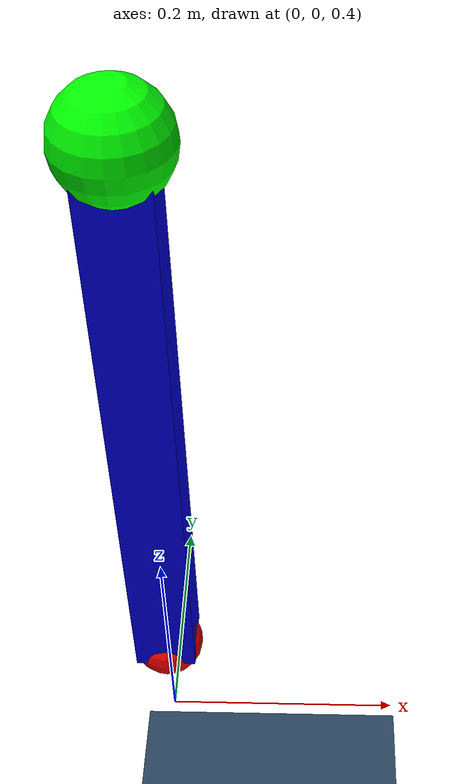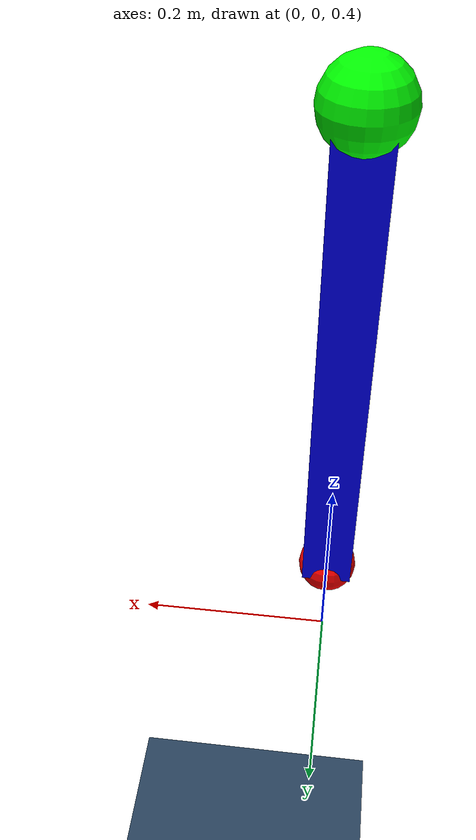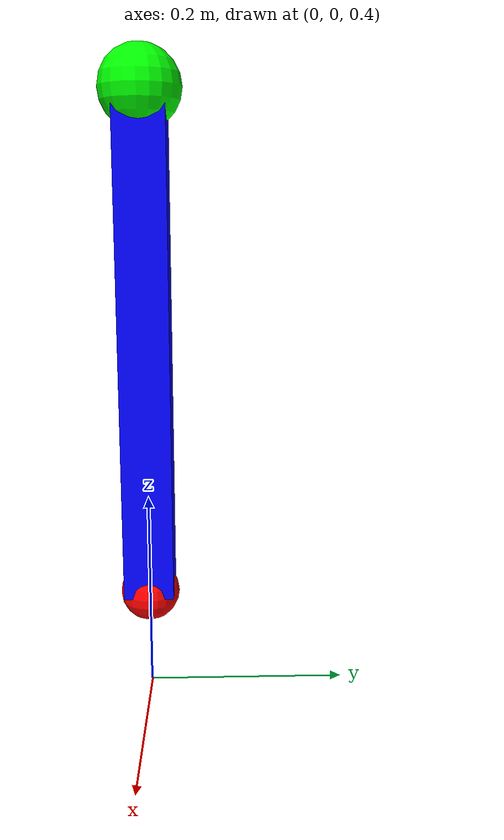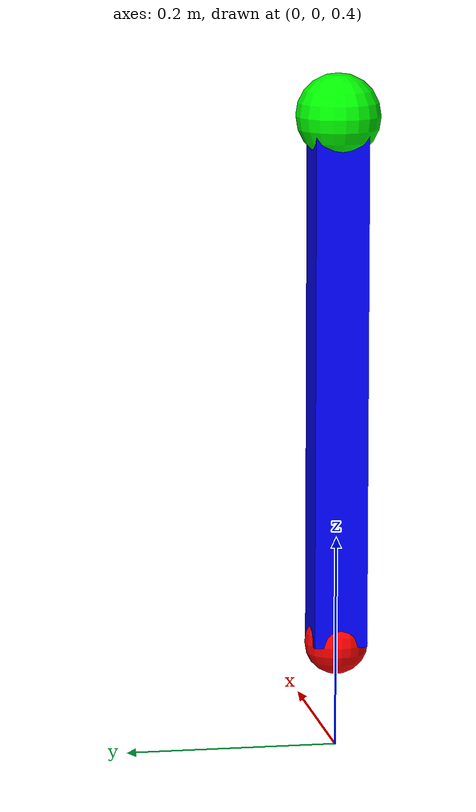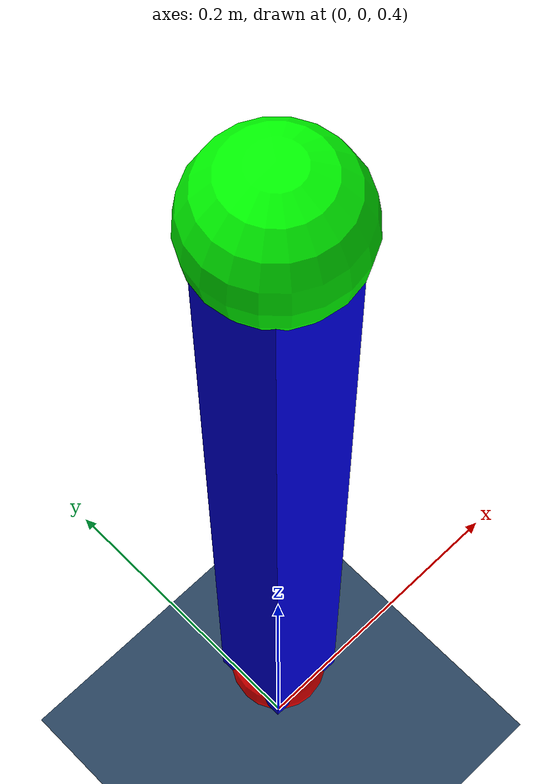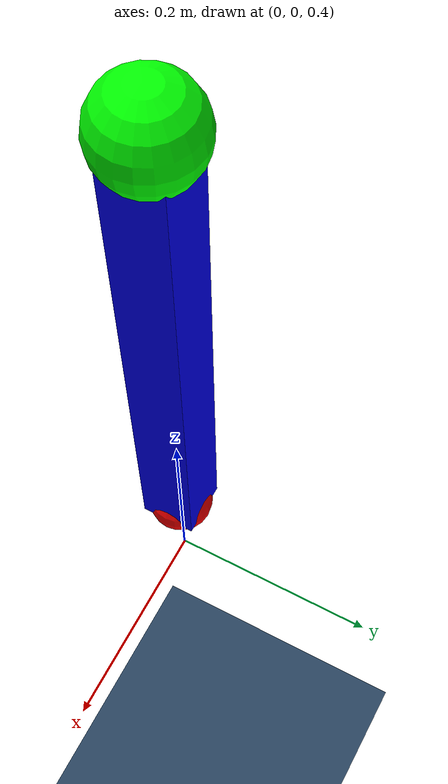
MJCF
<mujoco model="test_1dof_gravity">
  <compiler angle="radian" meshdir="." autolimits="true"/>

  <option timestep="0.001" gravity="0 0 -9.81"/>

  <!-- Keyframes for testing different initial poses -->
  <keyframe>
    <key name="test_pose" qpos="0.5"/>
    <key name="home" qpos="0.0"/>
    <key name="pos_small" qpos="0.5"/>
    <key name="pos_large" qpos="1.0"/>
    <key name="neg_small" qpos="-0.5"/>
    <key name="neg_large" qpos="-1.0"/>
  </keyframe>

  <asset>
    <texture name="grid" type="2d" builtin="checker" width="512" height="512" rgb1="0.1 0.2 0.3" rgb2="0.2 0.3 0.4"/>
    <material name="grid" texture="grid" texrepeat="1 1" texuniform="true" reflectance="0.2"/>
  </asset>

  <worldbody>
    <light diffuse=".5 .5 .5" pos="0 0 3" dir="0 0 -1"/>
    <geom name="floor" type="plane" size="10 10 0.05" material="grid"/>

    <!-- Vertical pendulum -->
    <body name="pendulum" pos="0 0 1">
      <!-- Inertial properties: 1kg mass at 0.5m below pivot -->
      <inertial pos="0 0 -0.5" mass="1.0"
                diaginertia="0.0833 0.0833 0.001"/>

      <!-- Joint at pivot (rotates about Y-axis) -->
      <joint name="j1" type="hinge" axis="0 1 0" range="-1.57 1.57" damping="0.1"/>

      <!-- Pivot marker: green sphere at joint location -->
      <geom name="pivot_marker" type="sphere" size="0.04"
            pos="0 0 0" rgba="0 1 0 1"/>

      <!-- Visual: vertical bar -->
      <geom name="pendulum_vis" type="box" size="0.025 0.025 0.25"
            pos="0 0 -0.25" rgba="0 0 1 1"/>

      <!-- COM marker: red sphere at center of mass -->
      <geom name="com_marker" type="sphere" size="0.03"
            pos="0 0 -0.5" rgba="1 0 0 1"/>
    </body>
  </worldbody>

  <actuator>
    <!-- Position actuator -->
    <position name="act_pos_j1" joint="j1"
              kp="100.0" kv="0.0"
              ctrlrange="-1.57 1.57" forcerange="-30 30"/>

    <!-- Velocity actuator -->
    <velocity name="act_vel_j1" joint="j1"
              kv="10.0"
              ctrlrange="-2.0 2.0" forcerange="-30 30"/>

    <!-- Torque actuator -->
    <motor name="act_tau_j1" joint="j1"
           ctrlrange="-30 30" forcerange="-30 30"/>
  </actuator>
</mujoco>
